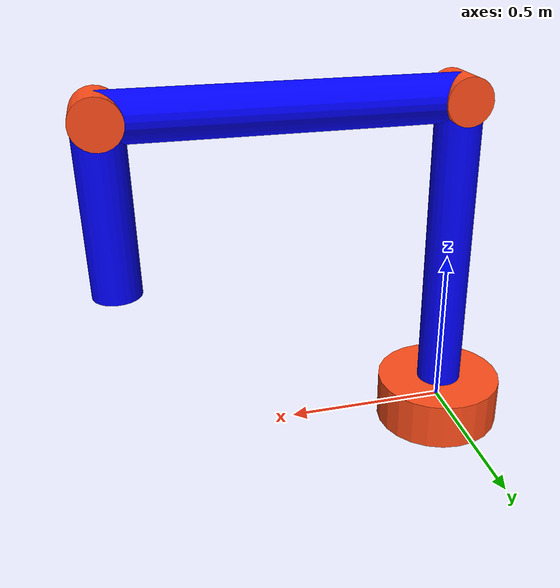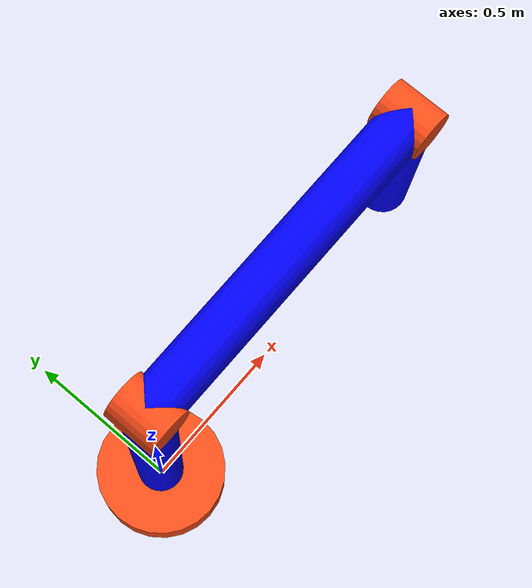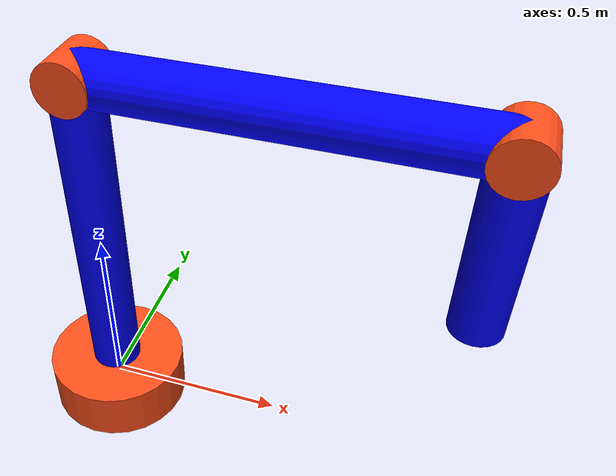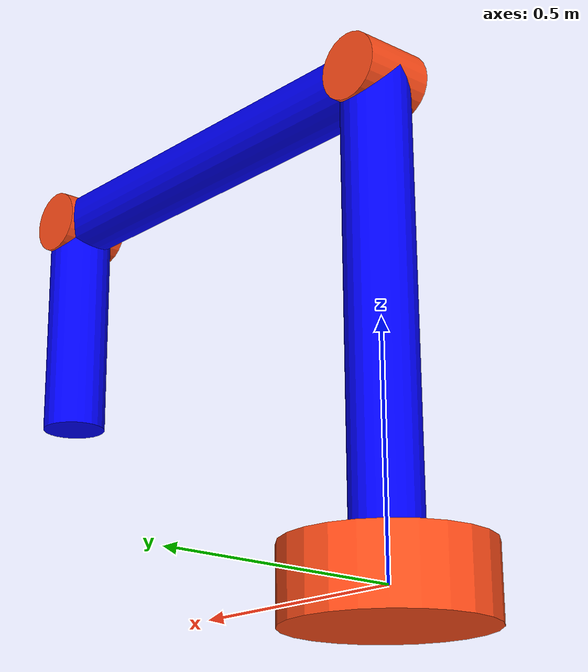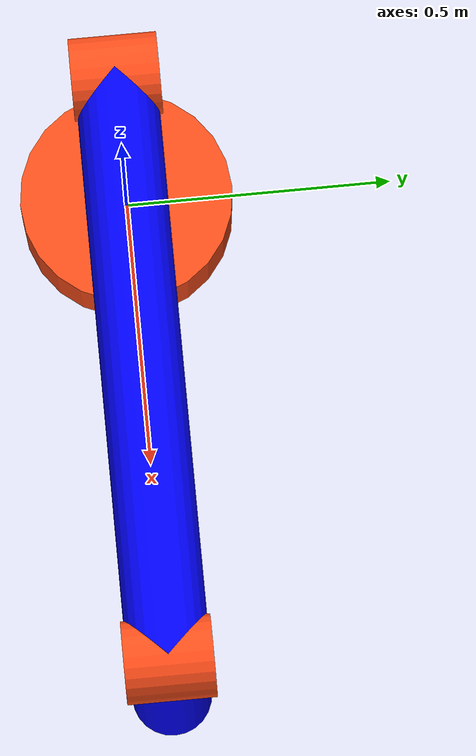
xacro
<?xml version="1.0"?>
<robot xmlns:xacro="http://www.ros.org/wiki/xacro" name="3r_manipulator">

    <xacro:include filename="urdf_include.xacro" />

    <link name="world" />

    <joint name="base_joint" type="fixed">
        <parent link="world" />
        <child link="base_link" />
        <axis xyz="0 0 0" />
        <origin xyz="0 0 0" rpy="0 0 0" />
    </joint>

    <xacro:property name="base_length" value="0.15" />
    <xacro:property name="base_radius" value="0.2" />
    <link name="base_link">
        <visual>
            <origin xyz="0 0 0" rpy="0 0  0" />
            <geometry>
                <cylinder length="${base_length}" radius="${base_radius}" />
            </geometry>
            <material name="orange" />
        </visual>
        <collision>
            <origin xyz="0 0 0" rpy="0 0 0" />
            <geometry>
                <cylinder length="${base_length}" radius="${base_radius}" />
            </geometry>
        </collision>
    </link>

    <joint name="joint1" type="revolute">
        <parent link="base_link" />
        <child link="body_link" />
        <origin xyz="0 0 0" rpy="0 0 0" />
        <axis xyz="0 0 1" />
        <limit lower="0" upper="${pi/2}" velocity="100" effort="100" />
    </joint>

    <xacro:property name="body_length" value="1" />
    <xacro:property name="body_radius" value="0.07" />
    <link name="body_link">
        <visual>
            <origin xyz="0 0 ${body_length/2}" rpy="0 0 0" />
            <geometry>
                <cylinder length="${body_length}" radius="${body_radius}" />
            </geometry>
            <material name="blue" />

        </visual>
        <collision>
            <origin xyz="0 0 ${body_length/2}" rpy="0 0 0" />
            <geometry>
                <cylinder length="${body_length}" radius="${body_radius}" />
            </geometry>
        </collision>
    </link>
    <joint name="joint2" type="revolute">
        <parent link="body_link" />
        <child link="shoulder_link" />
        <axis xyz="0 -1 0" />
        <origin xyz="0 0 ${body_length}" rpy="0 0 0" />
        <limit lower="-${pi/4}" upper="${pi/4}" velocity="100" effort="100" />
    </joint>
    <xacro:property name="shoulder_length" value="0.15" />
    <xacro:property name="shoulder_radius" value="0.07" />
    <link name="shoulder_link">
        <visual>
            <origin xyz="0 0 0" rpy="${pi/2} 0  0" />
            <geometry>
                <cylinder length="${shoulder_length}" radius="${shoulder_radius}" />
            </geometry>
            <material name="orange" />
        </visual>
        <collision>
            <origin xyz="0 0 0" rpy="${pi/2} 0  0" />
            <geometry>
                <cylinder length="${shoulder_length}" radius="${shoulder_radius}" />
            </geometry>
        </collision>
    </link>

    <joint name="joint3" type="fixed">
        <parent link="shoulder_link" />
        <child link="arm_link" />
        <origin xyz="0 0 0" rpy="0 0 0" />
    </joint>

    <xacro:property name="arm_length" value="1" />
    <xacro:property name="arm_radius" value="0.07" />
    <link name="arm_link">
        <visual>
            <origin xyz="${arm_length/2} 0 0" rpy="0 ${pi/2} 0" />
            <geometry>
                <cylinder length="${arm_length}" radius="${arm_radius}" />
            </geometry>
            <material name="blue" />
        </visual>
        <collision>
            <origin xyz="${arm_length/2} 0 0" rpy="0 ${pi/2} 0" />
            <geometry>
                <cylinder length="${arm_length}" radius="${arm_radius}" />
            </geometry>
        </collision>
    </link>
    <joint name="joint4" type="revolute">
        <parent link="arm_link" />
        <child link="elbow_link" />
        <axis xyz="0 -1 0" />
        <origin xyz="${arm_length} 0 0" rpy="0 0 0" />
        <limit lower="-${pi/3}" upper="${pi/3}" velocity="100" effort="100" />

    </joint>
    <xacro:property name="elbow_length" value="0.15" />
    <xacro:property name="elbow_radius" value="0.07" />
    <link name="elbow_link">
        <visual>
            <origin xyz="0 0 0" rpy="${pi/2} 0  0" />
            <geometry>
                <cylinder length="${elbow_length}" radius="${elbow_radius}" />
            </geometry>
            <material name="orange" />

        </visual>
        <collision>
            <origin xyz="0 0 0" rpy="${pi/2} 0  0" />
            <geometry>
                <cylinder length="${elbow_length}" radius="${elbow_radius}" />
            </geometry>
        </collision>
    </link>

    <joint name="joint5" type="fixed">
        <parent link="elbow_link" />
        <child link="forearm_link" />
        <origin xyz="0 0 0" rpy="0 ${pi/2} 0" />
    </joint>

    <xacro:property name="forearm_length" value="0.5" />
    <xacro:property name="forearm_radius" value="0.07" />
    <link name="forearm_link">
        <visual>
            <origin xyz="${forearm_length/2} 0 0" rpy="0 ${pi/2} 0" />
            <geometry>
                <cylinder length="${forearm_length}" radius="${forearm_radius}" />
            </geometry>
            <material name="blue" />
        </visual>
        <collision>
            <origin xyz="${forearm_length/2} 0 0" rpy="0 ${pi/2} 0" />
            <geometry>
                <cylinder length="${forearm_length}" radius="${forearm_radius}" />
            </geometry>
        </collision>
    </link>
</robot>

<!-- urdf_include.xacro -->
<robot xmlns:xacro="http://www.ros.org/wiki/xacro" name="cartesian">

    <material name ="orange">
        <color rgba="1 0.3 0.1 1"/>
    </material>
    <material name="blue">
        <color rgba="0 0 1 1" />
    </material>
</robot>
